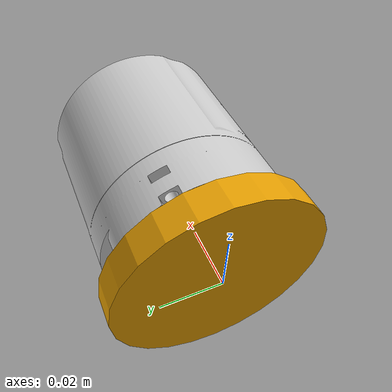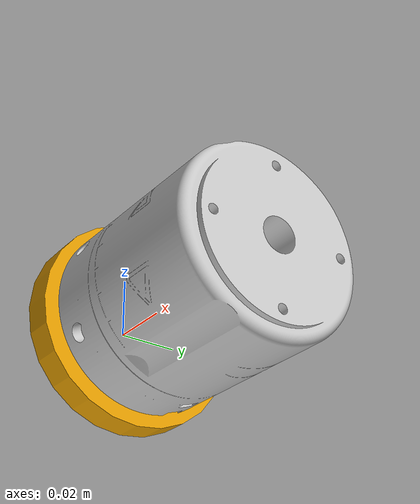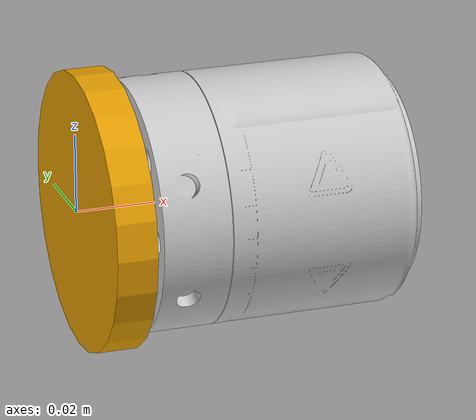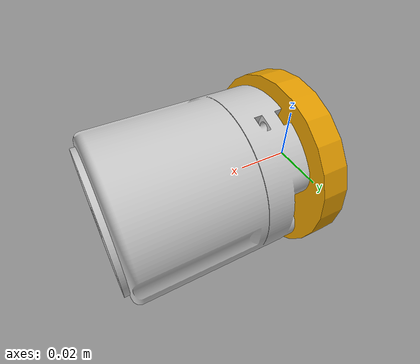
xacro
<?xml version="1.0"?>
<robot xmlns:xacro="http://www.ros.org/wiki/xacro"
       name="cpr_platform_medium" >

  <xacro:include filename="$(find irc_ros_description)/urdf/gripper_ext_dio_gripper.xacro" />
  <xacro:include filename="$(find irc_ros_description)/urdf/gripper_ext_dio_gripper.ros2_control.xacro" />

</robot>

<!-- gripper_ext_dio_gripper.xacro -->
<robot xmlns:xacro="http://www.ros.org/wiki/xacro"
    name="gripper_ext_dio_gripper">

  <link name="gripper_mount">
    <visual>
      <geometry>
        <cylinder radius="0.035" length="0.01"/>
      </geometry>
      <origin rpy="0.0 ${-pi/2} 0.0" xyz="0.005 0.0 0.0"/>
    </visual>
    <collision>
      <geometry>
        <cylinder radius="0.035" length="0.01"/>
      </geometry>
      <origin rpy="0.0 ${-pi/2} 0.0" xyz="0.005 0.0 0.0"/>
    </collision>
    <inertial>
      <mass value="1.0"/>
      <inertia ixx="1.0" ixy="0.0" ixz="0.0" iyy="1.0" iyz="0.0" izz="1.0"/>
    </inertial>
  </link>

  <joint name="gripper_mount_joint" type="fixed">
    <parent link="gripper_mount" />
    <child link="gripper_base" />
    <origin xyz="0.01 0.0 0.0" rpy="0.0 0.0 0.0" />
  </joint>

  <link name="gripper_base">
    <visual>
      <geometry>
        <mesh filename="package://irc_ros_description/meshes/gripper_schmalz_ecbpmi/Joint0.dae"/>
      </geometry>
      <origin rpy="${pi/2} ${-pi/2} 0.0" xyz="0.07 0.0 0.0"/>
    </visual>
    <collision>
      <geometry>
        <mesh filename="package://irc_ros_description/meshes/gripper_schmalz_ecbpmi/Joint0Coll.dae"/>
      </geometry>
      <origin rpy="${pi/2} ${-pi/2} 0.0" xyz="0.07 0.0 0.0"/>
    </collision>
    <inertial>
      <mass value="1.0"/>
      <inertia ixx="1.0" ixy="0.0" ixz="0.0" iyy="1.0" iyz="0.0" izz="1.0"/>
    </inertial>
  </link>
  <joint name="joint99" type="fixed">
    <parent link="gripper_base"/>
    <child link="tcp"/>
    <origin rpy="0.0 0.0 0.0" xyz="0.07341 0.0 0.0"/>
    <axis xyz="0 0 0"/>
  </joint>
  <link name="tcp">
    <inertial>
      <mass value="0.1"/>
      <inertia ixx="0.03" ixy="0.0" ixz="0.0" iyy="0.03" iyz="0.0" izz="0.03"/>
    </inertial>
  </link>
</robot>
